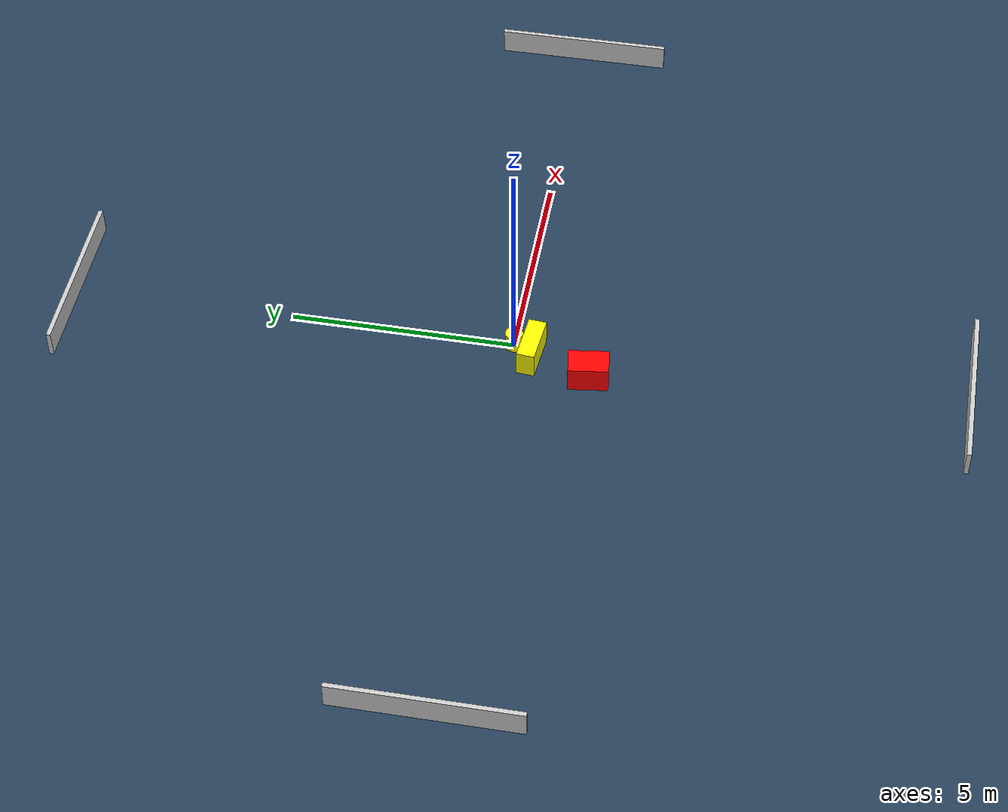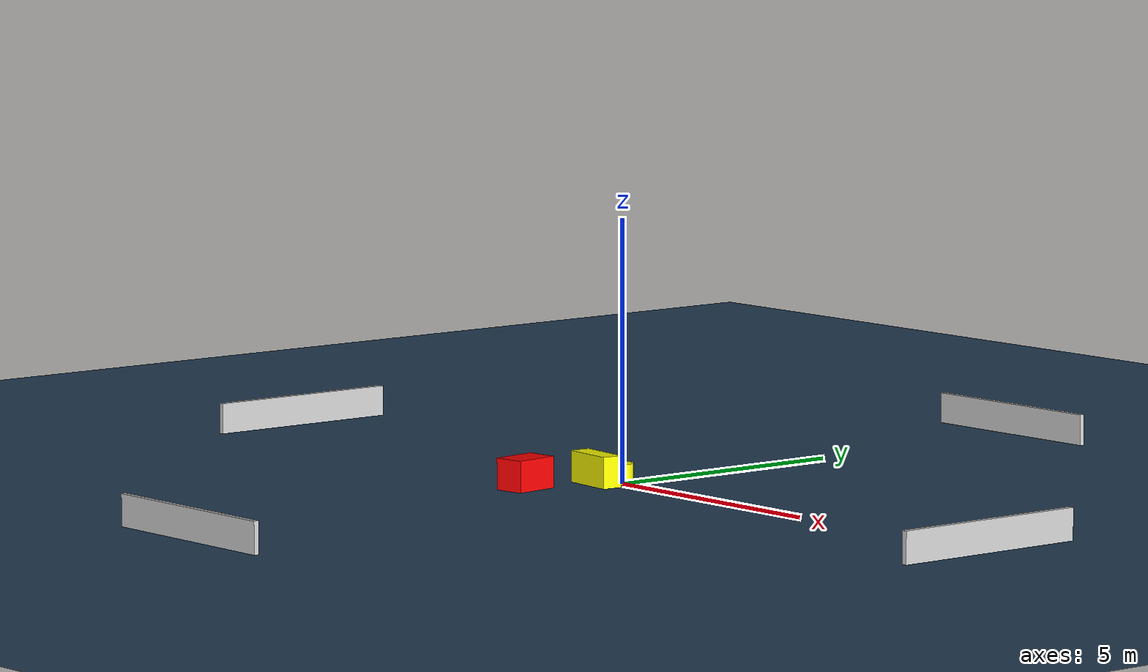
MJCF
<?xml version="1.0" ?>
<mujoco model="generated_environment">
  <option timestep="0.01" integrator="RK4" cone="elliptic"/>
  <default>
    <geom density="1"/>
  </default>
  <asset>
    <texture builtin="gradient" height="3072" name="skybox" rgb1="0.3 0.5 0.7" rgb2="0 0 0" type="skybox" width="512"/>
    <texture builtin="checker" height="300" name="groundplane" rgb1="0.2 0.3 0.4" rgb2="0.1 0.2 0.3" type="2d" width="300"/>
    <material name="groundplane" reflectance="0.2" texrepeat="5 5" texture="groundplane"/>
  </asset>
  <worldbody>
    <light dir="0 0 -1" directional="true" pos="0 0 1.5"/>
    <geom condim="3" friction="0.5 0.005 0.001" material="groundplane" name="floor" pos="0 0 0" size="0 0 0.05" type="plane"/>
    <body name="walls">
      <geom name="wall_1" condim="4" pos="-10.0 0.0 0.3" rgba="0.800000011920929 0.800000011920929 0.800000011920929 1.0" size="0.05 2.0 0.3" type="box"/>
      <geom name="wall_2" condim="4" pos="10.0 0.0 0.3" rgba="0.800000011920929 0.800000011920929 0.800000011920929 1.0" size="0.05 2.0 0.3" type="box"/>
      <geom name="wall_3" condim="4" pos="0.0 -10.0 0.3" rgba="0.800000011920929 0.800000011920929 0.800000011920929 1.0" size="2.0 0.05 0.3" type="box"/>
      <geom name="wall_4" condim="4" pos="0.0 10.0 0.3" rgba="0.800000011920929 0.800000011920929 0.800000011920929 1.0" size="2.0 0.05 0.3" type="box"/>
    </body>
    <body name="robot">
      <joint name="joint_x" type="slide" pos="0 0 0" axis="1 0 0"/>
      <joint name="joint_y" type="slide" pos="0 0 0" axis="0 1 0"/>
      <geom name="robot" type="cylinder" pos="0.0 0.0 0.2" size="0.2 0.2 0.0" mass="5.0" friction="1.0 0.005 0.0001" condim="4" rgba="1.0 1.0 0.0 1.0"/>
    </body>
    <body name="obstacle_1_movable">
      <geom name="obstacle_1_movable" condim="4" pos="-0.26925992179574276 -0.4311900024164201 0.3" euler="0 0 264.8215362601508" friction="0.0 0.005 0.001" rgba="1.0 1.0 0.0 1.0" size="0.2001342365380599 0.5412676561078457 0.3" type="box" mass="0.1"/>
      <joint type="free"/>
    </body>
    <body name="obstacle_2_static">
      <geom name="obstacle_2_static" condim="4" pos="-0.7304966589499025 -1.7604636431432528 0.3" euler="0 0 97.37567632787682" friction="0.0 0.005 0.001" rgba="1.0 0.0 0.0 1.0" size="0.4463143625702809 0.30408944030288815 0.3" type="box"/>
    </body>
  </worldbody>
  <actuator>
    <motor name="actuator_x" joint="joint_x" gear="1" ctrlrange="-1 1"/>
    <motor name="actuator_y" joint="joint_y" gear="1" ctrlrange="-1 1"/>
  </actuator>
</mujoco>
